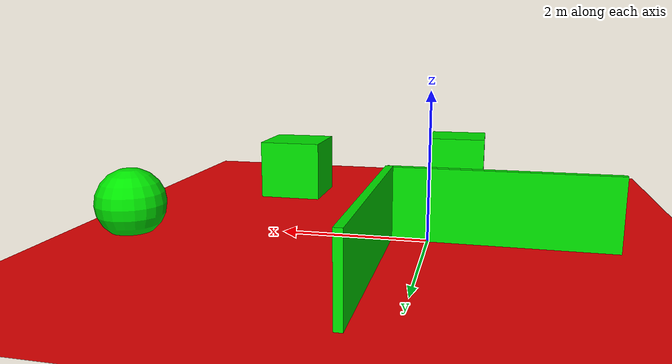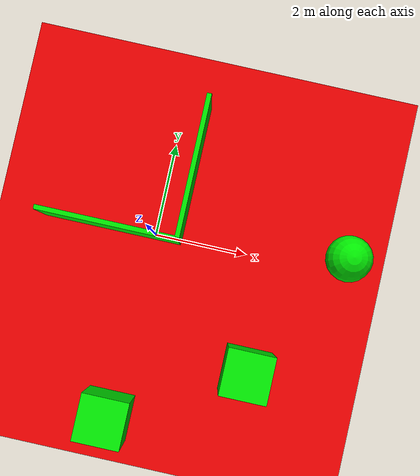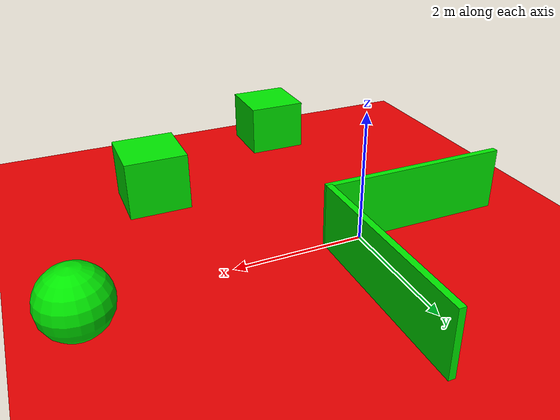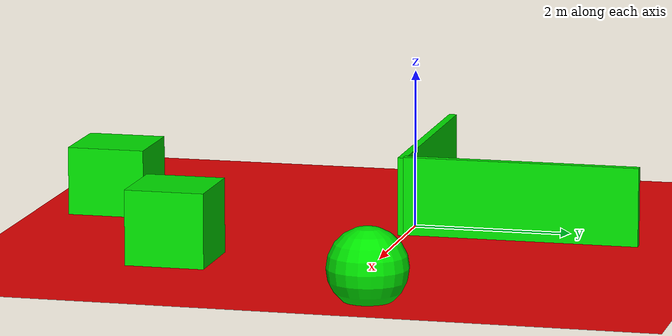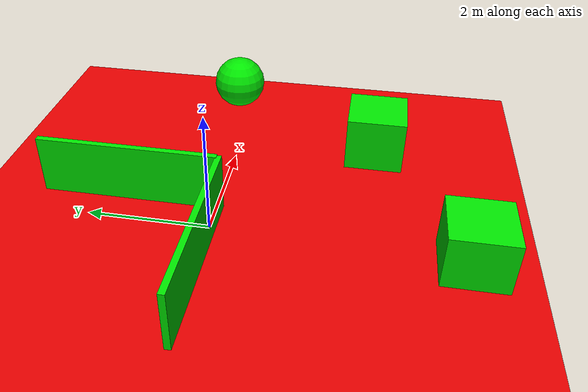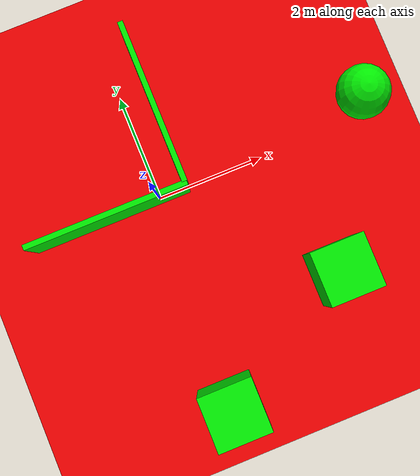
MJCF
<mujoco>
  <worldbody>
    <light diffuse=".5 .5 .5" pos="0 0 3" dir="0 0 -1" />
    <geom type="plane" size="5 5 1.110223E-16" rgba=".9 0 0 1" />
    <body pos="0.53 1.471 0.5">
      <geom type="box" size="0.05 1.5 0.5" euler="0 0 0" rgba="0 .9 0 1" />
    </body>
    <body pos="-0.934 -0.053 0.488">
      <geom type="box" size="1.5 0.05 0.5" euler="0 0 0" rgba="0 .9 0 1" />
    </body>
    <body pos="-0.1694852 -4.009993 0.3671973">
      <geom type="box" size="0.5 0.5 0.5" euler="0 0 0" rgba="0 .9 0 1" />
    </body>
    <body pos="2.532869 -2.459846 0.4334154">
      <geom type="box" size="0.5 0.5 0.5" euler="0 0 0" rgba="0 .9 0 1" />
    </body>
    <body pos="4.144171 0.3652323 0.3840542">
      <geom type="sphere" size="0.5 0.5 0.5" euler="0 0 0" rgba="0 .9 0 1" />
    </body>
  </worldbody>
</mujoco>
